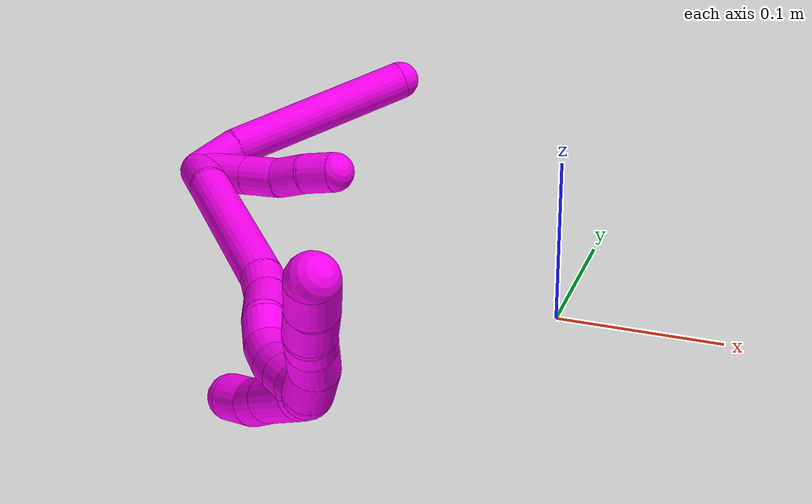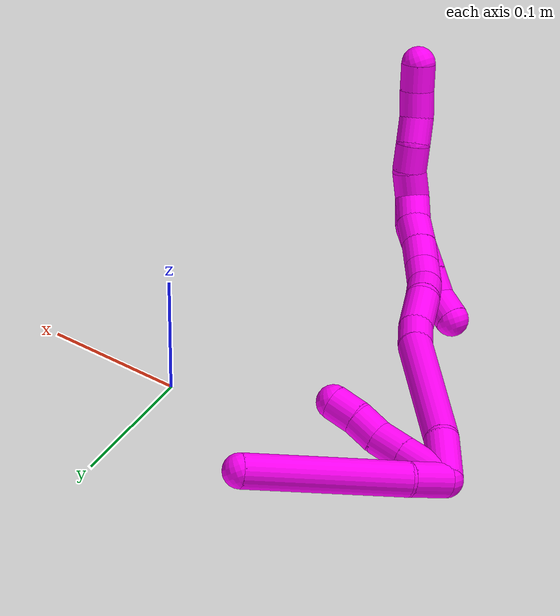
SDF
<sdf version="1.7">
 <world name="default">
  <model name="10">
   <static>0</static>
   <link name="10">
    <collision name="collision-cylinder-e_1_2_8">
     <pose>0.00264 0.013612 0.004619 -1.24366 0.181635 -0.130348</pose>
     <geometry><cylinder><radius>0.0125</radius><length>0.029229</length></cylinder></geometry>
     <surface>
      <friction><ode><mu>1.16</mu><mu2>1.16</mu2><slip1>0</slip1><slip2>0</slip2></ode></friction>
      <contact><ode><kp>1e+06</kp><kd>1</kd><max_vel>0</max_vel><min_depth>0.001</min_depth></ode></contact>
     </surface>
    </collision>
    <visual name="visual-cylinder-e_1_2_8">
     <pose>0.00264 0.013612 0.004619 -1.24366 0.181635 -0.130348</pose>
     <geometry><cylinder><radius>0.0125</radius><length>0.029229</length></cylinder></geometry>
     <material><ambient>1 0 0.964706 1</ambient></material>
    </visual>
    <collision name="collision-cylinder-e_2_8_6">
     <pose>0.027486 0.078795 0.031456 -1.164 0.376581 -0.24947</pose>
     <geometry><cylinder><radius>0.0125</radius><length>0.120771</length></cylinder></geometry>
     <surface>
      <friction><ode><mu>1.16</mu><mu2>1.16</mu2><slip1>0</slip1><slip2>0</slip2></ode></friction>
      <contact><ode><kp>1e+06</kp><kd>1</kd><max_vel>0</max_vel><min_depth>0.001</min_depth></ode></contact>
     </surface>
    </collision>
    <visual name="visual-cylinder-e_2_8_6">
     <pose>0.027486 0.078795 0.031456 -1.164 0.376581 -0.24947</pose>
     <geometry><cylinder><radius>0.0125</radius><length>0.120771</length></cylinder></geometry>
     <material><ambient>1 0 0.964706 1</ambient></material>
    </visual>
    <collision name="collision-cylinder-e_1_2_9">
     <pose>0.012075 0.002918 0.01321 -0.217424 0.728661 -0.083196</pose>
     <geometry><cylinder><radius>0.0125</radius><length>0.036267</length></cylinder></geometry>
     <surface>
      <friction><ode><mu>1.16</mu><mu2>1.16</mu2><slip1>0</slip1><slip2>0</slip2></ode></friction>
      <contact><ode><kp>1e+06</kp><kd>1</kd><max_vel>0</max_vel><min_depth>0.001</min_depth></ode></contact>
     </surface>
    </collision>
    <visual name="visual-cylinder-e_1_2_9">
     <pose>0.012075 0.002918 0.01321 -0.217424 0.728661 -0.083196</pose>
     <geometry><cylinder><radius>0.0125</radius><length>0.036267</length></cylinder></geometry>
     <material><ambient>1 0 0.964706 1</ambient></material>
    </visual>
    <collision name="collision-cylinder-e_2_9_10">
     <pose>0.031836 0.007693 0.034821 -0.217522 0.729222 -0.083304</pose>
     <geometry><cylinder><radius>0.0125</radius><length>0.023074</length></cylinder></geometry>
     <surface>
      <friction><ode><mu>1.16</mu><mu2>1.16</mu2><slip1>0</slip1><slip2>0</slip2></ode></friction>
      <contact><ode><kp>1e+06</kp><kd>1</kd><max_vel>0</max_vel><min_depth>0.001</min_depth></ode></contact>
     </surface>
    </collision>
    <visual name="visual-cylinder-e_2_9_10">
     <pose>0.031836 0.007693 0.034821 -0.217522 0.729222 -0.083304</pose>
     <geometry><cylinder><radius>0.0125</radius><length>0.023074</length></cylinder></geometry>
     <material><ambient>1 0 0.964706 1</ambient></material>
    </visual>
    <collision name="collision-cylinder-e_3_10_11">
     <pose>0.044217 0.011372 0.051968 -0.205356 0.483751 -0.05083</pose>
     <geometry><cylinder><radius>0.0125</radius><length>0.020185</length></cylinder></geometry>
     <surface>
      <friction><ode><mu>1.16</mu><mu2>1.16</mu2><slip1>0</slip1><slip2>0</slip2></ode></friction>
      <contact><ode><kp>1e+06</kp><kd>1</kd><max_vel>0</max_vel><min_depth>0.001</min_depth></ode></contact>
     </surface>
    </collision>
    <visual name="visual-cylinder-e_3_10_11">
     <pose>0.044217 0.011372 0.051968 -0.205356 0.483751 -0.05083</pose>
     <geometry><cylinder><radius>0.0125</radius><length>0.020185</length></cylinder></geometry>
     <material><ambient>1 0 0.964706 1</ambient></material>
    </visual>
    <collision name="collision-cylinder-e_4_11_5">
     <pose>0.054886 0.015573 0.06868 -0.290262 0.623239 -0.09409</pose>
     <geometry><cylinder><radius>0.0125</radius><length>0.020474</length></cylinder></geometry>
     <surface>
      <friction><ode><mu>1.16</mu><mu2>1.16</mu2><slip1>0</slip1><slip2>0</slip2></ode></friction>
      <contact><ode><kp>1e+06</kp><kd>1</kd><max_vel>0</max_vel><min_depth>0.001</min_depth></ode></contact>
     </surface>
    </collision>
    <visual name="visual-cylinder-e_4_11_5">
     <pose>0.054886 0.015573 0.06868 -0.290262 0.623239 -0.09409</pose>
     <geometry><cylinder><radius>0.0125</radius><length>0.020474</length></cylinder></geometry>
     <material><ambient>1 0 0.964706 1</ambient></material>
    </visual>
    <collision name="collision-cylinder-e_1_2_12">
     <pose>0.006251 -0.010643 0.013729 0.659451 0.345392 0.119247</pose>
     <geometry><cylinder><radius>0.0125</radius><length>0.036924</length></cylinder></geometry>
     <surface>
      <friction><ode><mu>1.16</mu><mu2>1.16</mu2><slip1>0</slip1><slip2>0</slip2></ode></friction>
      <contact><ode><kp>1e+06</kp><kd>1</kd><max_vel>0</max_vel><min_depth>0.001</min_depth></ode></contact>
     </surface>
    </collision>
    <visual name="visual-cylinder-e_1_2_12">
     <pose>0.006251 -0.010643 0.013729 0.659451 0.345392 0.119247</pose>
     <geometry><cylinder><radius>0.0125</radius><length>0.036924</length></cylinder></geometry>
     <material><ambient>1 0 0.964706 1</ambient></material>
    </visual>
    <collision name="collision-cylinder-e_2_12_13">
     <pose>0.042592 -0.053078 0.061312 0.754007 0.574923 0.233061</pose>
     <geometry><cylinder><radius>0.0125</radius><length>0.110675</length></cylinder></geometry>
     <surface>
      <friction><ode><mu>1.16</mu><mu2>1.16</mu2><slip1>0</slip1><slip2>0</slip2></ode></friction>
      <contact><ode><kp>1e+06</kp><kd>1</kd><max_vel>0</max_vel><min_depth>0.001</min_depth></ode></contact>
     </surface>
    </collision>
    <visual name="visual-cylinder-e_2_12_13">
     <pose>0.042592 -0.053078 0.061312 0.754007 0.574923 0.233061</pose>
     <geometry><cylinder><radius>0.0125</radius><length>0.110675</length></cylinder></geometry>
     <material><ambient>1 0 0.964706 1</ambient></material>
    </visual>
    <collision name="collision-cylinder-e_3_13_14">
     <pose>0.077102 -0.092207 0.101317 0.872959 0.432393 0.204196</pose>
     <geometry><cylinder><radius>0.0125</radius><length>0.02109</length></cylinder></geometry>
     <surface>
      <friction><ode><mu>1.16</mu><mu2>1.16</mu2><slip1>0</slip1><slip2>0</slip2></ode></friction>
      <contact><ode><kp>1e+06</kp><kd>1</kd><max_vel>0</max_vel><min_depth>0.001</min_depth></ode></contact>
     </surface>
    </collision>
    <visual name="visual-cylinder-e_3_13_14">
     <pose>0.077102 -0.092207 0.101317 0.872959 0.432393 0.204196</pose>
     <geometry><cylinder><radius>0.0125</radius><length>0.02109</length></cylinder></geometry>
     <material><ambient>1 0 0.964706 1</ambient></material>
    </visual>
    <collision name="collision-cylinder-e_4_14_15">
     <pose>0.084789 -0.110968 0.116868 0.882417 0.21746 0.103013</pose>
     <geometry><cylinder><radius>0.0125</radius><length>0.030301</length></cylinder></geometry>
     <surface>
      <friction><ode><mu>1.16</mu><mu2>1.16</mu2><slip1>0</slip1><slip2>0</slip2></ode></friction>
      <contact><ode><kp>1e+06</kp><kd>1</kd><max_vel>0</max_vel><min_depth>0.001</min_depth></ode></contact>
     </surface>
    </collision>
    <visual name="visual-cylinder-e_4_14_15">
     <pose>0.084789 -0.110968 0.116868 0.882417 0.21746 0.103013</pose>
     <geometry><cylinder><radius>0.0125</radius><length>0.030301</length></cylinder></geometry>
     <material><ambient>1 0 0.964706 1</ambient></material>
    </visual>
    <collision name="collision-cylinder-e_5_15_16">
     <pose>0.093016 -0.130189 0.130589 1.06448 0.507566 0.303164</pose>
     <geometry><cylinder><radius>0.0125</radius><length>0.020401</length></cylinder></geometry>
     <surface>
      <friction><ode><mu>1.16</mu><mu2>1.16</mu2><slip1>0</slip1><slip2>0</slip2></ode></friction>
      <contact><ode><kp>1e+06</kp><kd>1</kd><max_vel>0</max_vel><min_depth>0.001</min_depth></ode></contact>
     </surface>
    </collision>
    <visual name="visual-cylinder-e_5_15_16">
     <pose>0.093016 -0.130189 0.130589 1.06448 0.507566 0.303164</pose>
     <geometry><cylinder><radius>0.0125</radius><length>0.020401</length></cylinder></geometry>
     <material><ambient>1 0 0.964706 1</ambient></material>
    </visual>
    <collision name="collision-cylinder-e_6_16_17">
     <pose>0.102089 -0.143939 0.141836 0.710276 0.423409 0.159079</pose>
     <geometry><cylinder><radius>0.0125</radius><length>0.020032</length></cylinder></geometry>
     <surface>
      <friction><ode><mu>1.16</mu><mu2>1.16</mu2><slip1>0</slip1><slip2>0</slip2></ode></friction>
      <contact><ode><kp>1e+06</kp><kd>1</kd><max_vel>0</max_vel><min_depth>0.001</min_depth></ode></contact>
     </surface>
    </collision>
    <visual name="visual-cylinder-e_6_16_17">
     <pose>0.102089 -0.143939 0.141836 0.710276 0.423409 0.159079</pose>
     <geometry><cylinder><radius>0.0125</radius><length>0.020032</length></cylinder></geometry>
     <material><ambient>1 0 0.964706 1</ambient></material>
    </visual>
    <collision name="collision-cylinder-e_7_17_18">
     <pose>0.109199 -0.155085 0.156857 0.570087 0.301791 0.08905</pose>
     <geometry><cylinder><radius>0.0125</radius><length>0.020147</length></cylinder></geometry>
     <surface>
      <friction><ode><mu>1.16</mu><mu2>1.16</mu2><slip1>0</slip1><slip2>0</slip2></ode></friction>
      <contact><ode><kp>1e+06</kp><kd>1</kd><max_vel>0</max_vel><min_depth>0.001</min_depth></ode></contact>
     </surface>
    </collision>
    <visual name="visual-cylinder-e_7_17_18">
     <pose>0.109199 -0.155085 0.156857 0.570087 0.301791 0.08905</pose>
     <geometry><cylinder><radius>0.0125</radius><length>0.020147</length></cylinder></geometry>
     <material><ambient>1 0 0.964706 1</ambient></material>
    </visual>
    <collision name="collision-cylinder-e_8_18_19">
     <pose>0.115295 -0.164649 0.173431 0.476261 0.314428 0.07692</pose>
     <geometry><cylinder><radius>0.0125</radius><length>0.020061</length></cylinder></geometry>
     <surface>
      <friction><ode><mu>1.16</mu><mu2>1.16</mu2><slip1>0</slip1><slip2>0</slip2></ode></friction>
      <contact><ode><kp>1e+06</kp><kd>1</kd><max_vel>0</max_vel><min_depth>0.001</min_depth></ode></contact>
     </surface>
    </collision>
    <visual name="visual-cylinder-e_8_18_19">
     <pose>0.115295 -0.164649 0.173431 0.476261 0.314428 0.07692</pose>
     <geometry><cylinder><radius>0.0125</radius><length>0.020061</length></cylinder></geometry>
     <material><ambient>1 0 0.964706 1</ambient></material>
    </visual>
    <collision name="collision-cylinder-e_9_19_1">
     <pose>0.119885 -0.173965 0.190688 0.512809 0.146586 0.038495</pose>
     <geometry><cylinder><radius>0.0125</radius><length>0.020368</length></cylinder></geometry>
     <surface>
      <friction><ode><mu>1.16</mu><mu2>1.16</mu2><slip1>0</slip1><slip2>0</slip2></ode></friction>
      <contact><ode><kp>1e+06</kp><kd>1</kd><max_vel>0</max_vel><min_depth>0.001</min_depth></ode></contact>
     </surface>
    </collision>
    <visual name="visual-cylinder-e_9_19_1">
     <pose>0.119885 -0.173965 0.190688 0.512809 0.146586 0.038495</pose>
     <geometry><cylinder><radius>0.0125</radius><length>0.020368</length></cylinder></geometry>
     <material><ambient>1 0 0.964706 1</ambient></material>
    </visual>
    <collision name="collision-cylinder-e_1_1_20">
     <pose>0.117635 -0.178415 0.208728 -0.053232 -0.383081 0.010325</pose>
     <geometry><cylinder><radius>0.0125</radius><length>0.02</length></cylinder></geometry>
     <surface>
      <friction><ode><mu>1.16</mu><mu2>1.16</mu2><slip1>0</slip1><slip2>0</slip2></ode></friction>
      <contact><ode><kp>1e+06</kp><kd>1</kd><max_vel>0</max_vel><min_depth>0.001</min_depth></ode></contact>
     </surface>
    </collision>
    <visual name="visual-cylinder-e_1_1_20">
     <pose>0.117635 -0.178415 0.208728 -0.053232 -0.383081 0.010325</pose>
     <geometry><cylinder><radius>0.0125</radius><length>0.02</length></cylinder></geometry>
     <material><ambient>1 0 0.964706 1</ambient></material>
    </visual>
    <collision name="collision-cylinder-e_2_20_21">
     <pose>0.108931 -0.179455 0.226534 0.177629 -0.51964 -0.047335</pose>
     <geometry><cylinder><radius>0.0125</radius><length>0.02</length></cylinder></geometry>
     <surface>
      <friction><ode><mu>1.16</mu><mu2>1.16</mu2><slip1>0</slip1><slip2>0</slip2></ode></friction>
      <contact><ode><kp>1e+06</kp><kd>1</kd><max_vel>0</max_vel><min_depth>0.001</min_depth></ode></contact>
     </surface>
    </collision>
    <visual name="visual-cylinder-e_2_20_21">
     <pose>0.108931 -0.179455 0.226534 0.177629 -0.51964 -0.047335</pose>
     <geometry><cylinder><radius>0.0125</radius><length>0.02</length></cylinder></geometry>
     <material><ambient>1 0 0.964706 1</ambient></material>
    </visual>
    <collision name="collision-cylinder-e_3_21_22">
     <pose>0.100989 -0.184481 0.243962 0.374512 -0.30219 -0.057682</pose>
     <geometry><cylinder><radius>0.0125</radius><length>0.02</length></cylinder></geometry>
     <surface>
      <friction><ode><mu>1.16</mu><mu2>1.16</mu2><slip1>0</slip1><slip2>0</slip2></ode></friction>
      <contact><ode><kp>1e+06</kp><kd>1</kd><max_vel>0</max_vel><min_depth>0.001</min_depth></ode></contact>
     </surface>
    </collision>
    <visual name="visual-cylinder-e_3_21_22">
     <pose>0.100989 -0.184481 0.243962 0.374512 -0.30219 -0.057682</pose>
     <geometry><cylinder><radius>0.0125</radius><length>0.02</length></cylinder></geometry>
     <material><ambient>1 0 0.964706 1</ambient></material>
    </visual>
    <collision name="collision-cylinder-e_4_22_23">
     <pose>0.094069 -0.188974 0.261982 0.109125 -0.405428 -0.02245</pose>
     <geometry><cylinder><radius>0.0125</radius><length>0.02</length></cylinder></geometry>
     <surface>
      <friction><ode><mu>1.16</mu><mu2>1.16</mu2><slip1>0</slip1><slip2>0</slip2></ode></friction>
      <contact><ode><kp>1e+06</kp><kd>1</kd><max_vel>0</max_vel><min_depth>0.001</min_depth></ode></contact>
     </surface>
    </collision>
    <visual name="visual-cylinder-e_4_22_23">
     <pose>0.094069 -0.188974 0.261982 0.109125 -0.405428 -0.02245</pose>
     <geometry><cylinder><radius>0.0125</radius><length>0.02</length></cylinder></geometry>
     <material><ambient>1 0 0.964706 1</ambient></material>
    </visual>
    <collision name="collision-cylinder-e_5_23_4">
     <pose>0.085378 -0.190666 0.279891 0.078548 -0.494579 -0.019839</pose>
     <geometry><cylinder><radius>0.0125</radius><length>0.02</length></cylinder></geometry>
     <surface>
      <friction><ode><mu>1.16</mu><mu2>1.16</mu2><slip1>0</slip1><slip2>0</slip2></ode></friction>
      <contact><ode><kp>1e+06</kp><kd>1</kd><max_vel>0</max_vel><min_depth>0.001</min_depth></ode></contact>
     </surface>
    </collision>
    <visual name="visual-cylinder-e_5_23_4">
     <pose>0.085378 -0.190666 0.279891 0.078548 -0.494579 -0.019839</pose>
     <geometry><cylinder><radius>0.0125</radius><length>0.02</length></cylinder></geometry>
     <material><ambient>1 0 0.964706 1</ambient></material>
    </visual>
    <collision name="collision-cylinder-e_1_1_24">
     <pose>0.121933 -0.174548 0.189419 -2.73216 0.051167 -0.245256</pose>
     <geometry><cylinder><radius>0.0125</radius><length>0.021935</length></cylinder></geometry>
     <surface>
      <friction><ode><mu>1.16</mu><mu2>1.16</mu2><slip1>0</slip1><slip2>0</slip2></ode></friction>
      <contact><ode><kp>1e+06</kp><kd>1</kd><max_vel>0</max_vel><min_depth>0.001</min_depth></ode></contact>
     </surface>
    </collision>
    <visual name="visual-cylinder-e_1_1_24">
     <pose>0.121933 -0.174548 0.189419 -2.73216 0.051167 -0.245256</pose>
     <geometry><cylinder><radius>0.0125</radius><length>0.021935</length></cylinder></geometry>
     <material><ambient>1 0 0.964706 1</ambient></material>
    </visual>
    <collision name="collision-cylinder-e_2_24_25">
     <pose>0.119207 -0.166773 0.161127 -2.95656 -0.175284 1.51639</pose>
     <geometry><cylinder><radius>0.0125</radius><length>0.0377</length></cylinder></geometry>
     <surface>
      <friction><ode><mu>1.16</mu><mu2>1.16</mu2><slip1>0</slip1><slip2>0</slip2></ode></friction>
      <contact><ode><kp>1e+06</kp><kd>1</kd><max_vel>0</max_vel><min_depth>0.001</min_depth></ode></contact>
     </surface>
    </collision>
    <visual name="visual-cylinder-e_2_24_25">
     <pose>0.119207 -0.166773 0.161127 -2.95656 -0.175284 1.51639</pose>
     <geometry><cylinder><radius>0.0125</radius><length>0.0377</length></cylinder></geometry>
     <material><ambient>1 0 0.964706 1</ambient></material>
    </visual>
    <collision name="collision-cylinder-e_3_25_26">
     <pose>0.114568 -0.161851 0.133015 -2.99009 -0.134669 1.45289</pose>
     <geometry><cylinder><radius>0.0125</radius><length>0.020146</length></cylinder></geometry>
     <surface>
      <friction><ode><mu>1.16</mu><mu2>1.16</mu2><slip1>0</slip1><slip2>0</slip2></ode></friction>
      <contact><ode><kp>1e+06</kp><kd>1</kd><max_vel>0</max_vel><min_depth>0.001</min_depth></ode></contact>
     </surface>
    </collision>
    <visual name="visual-cylinder-e_3_25_26">
     <pose>0.114568 -0.161851 0.133015 -2.99009 -0.134669 1.45289</pose>
     <geometry><cylinder><radius>0.0125</radius><length>0.020146</length></cylinder></geometry>
     <material><ambient>1 0 0.964706 1</ambient></material>
    </visual>
    <collision name="collision-cylinder-e_4_26_3">
     <pose>0.108541 -0.158954 0.114292 -2.98585 -0.480657 2.52509</pose>
     <geometry><cylinder><radius>0.0125</radius><length>0.020219</length></cylinder></geometry>
     <surface>
      <friction><ode><mu>1.16</mu><mu2>1.16</mu2><slip1>0</slip1><slip2>0</slip2></ode></friction>
      <contact><ode><kp>1e+06</kp><kd>1</kd><max_vel>0</max_vel><min_depth>0.001</min_depth></ode></contact>
     </surface>
    </collision>
    <visual name="visual-cylinder-e_4_26_3">
     <pose>0.108541 -0.158954 0.114292 -2.98585 -0.480657 2.52509</pose>
     <geometry><cylinder><radius>0.0125</radius><length>0.020219</length></cylinder></geometry>
     <material><ambient>1 0 0.964706 1</ambient></material>
    </visual>
    <collision name="collision-sphere-3">
     <pose>0.103867 -0.157564 0.105436 0 -0 0</pose>
     <geometry><sphere><radius>0.0125</radius></sphere></geometry>
     <surface>
      <friction><ode><mu>1.16</mu><mu2>1.16</mu2><slip1>0</slip1><slip2>0</slip2></ode></friction>
      <contact><ode><kp>1e+06</kp><kd>1</kd><max_vel>0</max_vel><min_depth>0.001</min_depth></ode></contact>
     </surface>
    </collision>
    <visual name="visual-sphere-3">
     <pose>0.103867 -0.157564 0.105436 0 -0 0</pose>
     <geometry><sphere><radius>0.0125</radius></sphere></geometry>
     <material><ambient>1 0 0.964706 1</ambient></material>
    </visual>
    <collision name="collision-sphere-26">
     <pose>0.113215 -0.160345 0.123147 0 -0 0</pose>
     <geometry><sphere><radius>0.0125</radius></sphere></geometry>
     <surface>
      <friction><ode><mu>1.16</mu><mu2>1.16</mu2><slip1>0</slip1><slip2>0</slip2></ode></friction>
      <contact><ode><kp>1e+06</kp><kd>1</kd><max_vel>0</max_vel><min_depth>0.001</min_depth></ode></contact>
     </surface>
    </collision>
    <visual name="visual-sphere-26">
     <pose>0.113215 -0.160345 0.123147 0 -0 0</pose>
     <geometry><sphere><radius>0.0125</radius></sphere></geometry>
     <material><ambient>1 0 0.964706 1</ambient></material>
    </visual>
    <collision name="collision-sphere-25">
     <pose>0.11592 -0.163358 0.142882 0 -0 0</pose>
     <geometry><sphere><radius>0.0125</radius></sphere></geometry>
     <surface>
      <friction><ode><mu>1.16</mu><mu2>1.16</mu2><slip1>0</slip1><slip2>0</slip2></ode></friction>
      <contact><ode><kp>1e+06</kp><kd>1</kd><max_vel>0</max_vel><min_depth>0.001</min_depth></ode></contact>
     </surface>
    </collision>
    <visual name="visual-sphere-25">
     <pose>0.11592 -0.163358 0.142882 0 -0 0</pose>
     <geometry><sphere><radius>0.0125</radius></sphere></geometry>
     <material><ambient>1 0 0.964706 1</ambient></material>
    </visual>
    <collision name="collision-sphere-24">
     <pose>0.122494 -0.170187 0.179371 0 -0 0</pose>
     <geometry><sphere><radius>0.0125</radius></sphere></geometry>
     <surface>
      <friction><ode><mu>1.16</mu><mu2>1.16</mu2><slip1>0</slip1><slip2>0</slip2></ode></friction>
      <contact><ode><kp>1e+06</kp><kd>1</kd><max_vel>0</max_vel><min_depth>0.001</min_depth></ode></contact>
     </surface>
    </collision>
    <visual name="visual-sphere-24">
     <pose>0.122494 -0.170187 0.179371 0 -0 0</pose>
     <geometry><sphere><radius>0.0125</radius></sphere></geometry>
     <material><ambient>1 0 0.964706 1</ambient></material>
    </visual>
    <collision name="collision-sphere-4">
     <pose>0.080632 -0.191356 0.288666 0 -0 0</pose>
     <geometry><sphere><radius>0.0125</radius></sphere></geometry>
     <surface>
      <friction><ode><mu>1.16</mu><mu2>1.16</mu2><slip1>0</slip1><slip2>0</slip2></ode></friction>
      <contact><ode><kp>1e+06</kp><kd>1</kd><max_vel>0</max_vel><min_depth>0.001</min_depth></ode></contact>
     </surface>
    </collision>
    <visual name="visual-sphere-4">
     <pose>0.080632 -0.191356 0.288666 0 -0 0</pose>
     <geometry><sphere><radius>0.0125</radius></sphere></geometry>
     <material><ambient>1 0 0.964706 1</ambient></material>
    </visual>
    <collision name="collision-sphere-23">
     <pose>0.090125 -0.189975 0.271117 0 -0 0</pose>
     <geometry><sphere><radius>0.0125</radius></sphere></geometry>
     <surface>
      <friction><ode><mu>1.16</mu><mu2>1.16</mu2><slip1>0</slip1><slip2>0</slip2></ode></friction>
      <contact><ode><kp>1e+06</kp><kd>1</kd><max_vel>0</max_vel><min_depth>0.001</min_depth></ode></contact>
     </surface>
    </collision>
    <visual name="visual-sphere-23">
     <pose>0.090125 -0.189975 0.271117 0 -0 0</pose>
     <geometry><sphere><radius>0.0125</radius></sphere></geometry>
     <material><ambient>1 0 0.964706 1</ambient></material>
    </visual>
    <collision name="collision-sphere-22">
     <pose>0.098013 -0.187973 0.252848 0 -0 0</pose>
     <geometry><sphere><radius>0.0125</radius></sphere></geometry>
     <surface>
      <friction><ode><mu>1.16</mu><mu2>1.16</mu2><slip1>0</slip1><slip2>0</slip2></ode></friction>
      <contact><ode><kp>1e+06</kp><kd>1</kd><max_vel>0</max_vel><min_depth>0.001</min_depth></ode></contact>
     </surface>
    </collision>
    <visual name="visual-sphere-22">
     <pose>0.098013 -0.187973 0.252848 0 -0 0</pose>
     <geometry><sphere><radius>0.0125</radius></sphere></geometry>
     <material><ambient>1 0 0.964706 1</ambient></material>
    </visual>
    <collision name="collision-sphere-21">
     <pose>0.103966 -0.180989 0.235077 0 -0 0</pose>
     <geometry><sphere><radius>0.0125</radius></sphere></geometry>
     <surface>
      <friction><ode><mu>1.16</mu><mu2>1.16</mu2><slip1>0</slip1><slip2>0</slip2></ode></friction>
      <contact><ode><kp>1e+06</kp><kd>1</kd><max_vel>0</max_vel><min_depth>0.001</min_depth></ode></contact>
     </surface>
    </collision>
    <visual name="visual-sphere-21">
     <pose>0.103966 -0.180989 0.235077 0 -0 0</pose>
     <geometry><sphere><radius>0.0125</radius></sphere></geometry>
     <material><ambient>1 0 0.964706 1</ambient></material>
    </visual>
    <collision name="collision-sphere-20">
     <pose>0.113897 -0.177921 0.21799 0 -0 0</pose>
     <geometry><sphere><radius>0.0125</radius></sphere></geometry>
     <surface>
      <friction><ode><mu>1.16</mu><mu2>1.16</mu2><slip1>0</slip1><slip2>0</slip2></ode></friction>
      <contact><ode><kp>1e+06</kp><kd>1</kd><max_vel>0</max_vel><min_depth>0.001</min_depth></ode></contact>
     </surface>
    </collision>
    <visual name="visual-sphere-20">
     <pose>0.113897 -0.177921 0.21799 0 -0 0</pose>
     <geometry><sphere><radius>0.0125</radius></sphere></geometry>
     <material><ambient>1 0 0.964706 1</ambient></material>
    </visual>
    <collision name="collision-sphere-11">
     <pose>0.048911 0.013194 0.060715 0 -0 0</pose>
     <geometry><sphere><radius>0.0125</radius></sphere></geometry>
     <surface>
      <friction><ode><mu>1.16</mu><mu2>1.16</mu2><slip1>0</slip1><slip2>0</slip2></ode></friction>
      <contact><ode><kp>1e+06</kp><kd>1</kd><max_vel>0</max_vel><min_depth>0.001</min_depth></ode></contact>
     </surface>
    </collision>
    <visual name="visual-sphere-11">
     <pose>0.048911 0.013194 0.060715 0 -0 0</pose>
     <geometry><sphere><radius>0.0125</radius></sphere></geometry>
     <material><ambient>1 0 0.964706 1</ambient></material>
    </visual>
    <collision name="collision-sphere-10">
     <pose>0.039523 0.00955 0.043221 0 -0 0</pose>
     <geometry><sphere><radius>0.0125</radius></sphere></geometry>
     <surface>
      <friction><ode><mu>1.16</mu><mu2>1.16</mu2><slip1>0</slip1><slip2>0</slip2></ode></friction>
      <contact><ode><kp>1e+06</kp><kd>1</kd><max_vel>0</max_vel><min_depth>0.001</min_depth></ode></contact>
     </surface>
    </collision>
    <visual name="visual-sphere-10">
     <pose>0.039523 0.00955 0.043221 0 -0 0</pose>
     <geometry><sphere><radius>0.0125</radius></sphere></geometry>
     <material><ambient>1 0 0.964706 1</ambient></material>
    </visual>
    <collision name="collision-sphere-6">
     <pose>0.049693 0.130367 0.053675 0 -0 0</pose>
     <geometry><sphere><radius>0.0125</radius></sphere></geometry>
     <surface>
      <friction><ode><mu>1.16</mu><mu2>1.16</mu2><slip1>0</slip1><slip2>0</slip2></ode></friction>
      <contact><ode><kp>1e+06</kp><kd>1</kd><max_vel>0</max_vel><min_depth>0.001</min_depth></ode></contact>
     </surface>
    </collision>
    <visual name="visual-sphere-6">
     <pose>0.049693 0.130367 0.053675 0 -0 0</pose>
     <geometry><sphere><radius>0.0125</radius></sphere></geometry>
     <material><ambient>1 0 0.964706 1</ambient></material>
    </visual>
    <collision name="collision-sphere-9">
     <pose>0.024149 0.005837 0.026421 0 -0 0</pose>
     <geometry><sphere><radius>0.0125</radius></sphere></geometry>
     <surface>
      <friction><ode><mu>1.16</mu><mu2>1.16</mu2><slip1>0</slip1><slip2>0</slip2></ode></friction>
      <contact><ode><kp>1e+06</kp><kd>1</kd><max_vel>0</max_vel><min_depth>0.001</min_depth></ode></contact>
     </surface>
    </collision>
    <visual name="visual-sphere-9">
     <pose>0.024149 0.005837 0.026421 0 -0 0</pose>
     <geometry><sphere><radius>0.0125</radius></sphere></geometry>
     <material><ambient>1 0 0.964706 1</ambient></material>
    </visual>
    <collision name="collision-sphere-2">
     <geometry><sphere><radius>0.0125</radius></sphere></geometry>
     <surface>
      <friction><ode><mu>1.16</mu><mu2>1.16</mu2><slip1>0</slip1><slip2>0</slip2></ode></friction>
      <contact><ode><kp>1e+06</kp><kd>1</kd><max_vel>0</max_vel><min_depth>0.001</min_depth></ode></contact>
     </surface>
    </collision>
    <visual name="visual-sphere-2">
     <geometry><sphere><radius>0.0125</radius></sphere></geometry>
     <material><ambient>1 0 0.964706 1</ambient></material>
    </visual>
    <collision name="collision-sphere-19">
     <pose>0.118398 -0.169022 0.181909 0 -0 0</pose>
     <geometry><sphere><radius>0.0125</radius></sphere></geometry>
     <surface>
      <friction><ode><mu>1.16</mu><mu2>1.16</mu2><slip1>0</slip1><slip2>0</slip2></ode></friction>
      <contact><ode><kp>1e+06</kp><kd>1</kd><max_vel>0</max_vel><min_depth>0.001</min_depth></ode></contact>
     </surface>
    </collision>
    <visual name="visual-sphere-19">
     <pose>0.118398 -0.169022 0.181909 0 -0 0</pose>
     <geometry><sphere><radius>0.0125</radius></sphere></geometry>
     <material><ambient>1 0 0.964706 1</ambient></material>
    </visual>
    <collision name="collision-sphere-8">
     <pose>0.00528 0.027224 0.009238 0 -0 0</pose>
     <geometry><sphere><radius>0.0125</radius></sphere></geometry>
     <surface>
      <friction><ode><mu>1.16</mu><mu2>1.16</mu2><slip1>0</slip1><slip2>0</slip2></ode></friction>
      <contact><ode><kp>1e+06</kp><kd>1</kd><max_vel>0</max_vel><min_depth>0.001</min_depth></ode></contact>
     </surface>
    </collision>
    <visual name="visual-sphere-8">
     <pose>0.00528 0.027224 0.009238 0 -0 0</pose>
     <geometry><sphere><radius>0.0125</radius></sphere></geometry>
     <material><ambient>1 0 0.964706 1</ambient></material>
    </visual>
    <collision name="collision-sphere-5">
     <pose>0.060861 0.017952 0.076644 0 -0 0</pose>
     <geometry><sphere><radius>0.0125</radius></sphere></geometry>
     <surface>
      <friction><ode><mu>1.16</mu><mu2>1.16</mu2><slip1>0</slip1><slip2>0</slip2></ode></friction>
      <contact><ode><kp>1e+06</kp><kd>1</kd><max_vel>0</max_vel><min_depth>0.001</min_depth></ode></contact>
     </surface>
    </collision>
    <visual name="visual-sphere-5">
     <pose>0.060861 0.017952 0.076644 0 -0 0</pose>
     <geometry><sphere><radius>0.0125</radius></sphere></geometry>
     <material><ambient>1 0 0.964706 1</ambient></material>
    </visual>
    <collision name="collision-sphere-12">
     <pose>0.012501 -0.021286 0.027458 0 -0 0</pose>
     <geometry><sphere><radius>0.0125</radius></sphere></geometry>
     <surface>
      <friction><ode><mu>1.16</mu><mu2>1.16</mu2><slip1>0</slip1><slip2>0</slip2></ode></friction>
      <contact><ode><kp>1e+06</kp><kd>1</kd><max_vel>0</max_vel><min_depth>0.001</min_depth></ode></contact>
     </surface>
    </collision>
    <visual name="visual-sphere-12">
     <pose>0.012501 -0.021286 0.027458 0 -0 0</pose>
     <geometry><sphere><radius>0.0125</radius></sphere></geometry>
     <material><ambient>1 0 0.964706 1</ambient></material>
    </visual>
    <collision name="collision-sphere-13">
     <pose>0.072683 -0.08487 0.095165 0 -0 0</pose>
     <geometry><sphere><radius>0.0125</radius></sphere></geometry>
     <surface>
      <friction><ode><mu>1.16</mu><mu2>1.16</mu2><slip1>0</slip1><slip2>0</slip2></ode></friction>
      <contact><ode><kp>1e+06</kp><kd>1</kd><max_vel>0</max_vel><min_depth>0.001</min_depth></ode></contact>
     </surface>
    </collision>
    <visual name="visual-sphere-13">
     <pose>0.072683 -0.08487 0.095165 0 -0 0</pose>
     <geometry><sphere><radius>0.0125</radius></sphere></geometry>
     <material><ambient>1 0 0.964706 1</ambient></material>
    </visual>
    <collision name="collision-sphere-14">
     <pose>0.08152 -0.099543 0.107469 0 -0 0</pose>
     <geometry><sphere><radius>0.0125</radius></sphere></geometry>
     <surface>
      <friction><ode><mu>1.16</mu><mu2>1.16</mu2><slip1>0</slip1><slip2>0</slip2></ode></friction>
      <contact><ode><kp>1e+06</kp><kd>1</kd><max_vel>0</max_vel><min_depth>0.001</min_depth></ode></contact>
     </surface>
    </collision>
    <visual name="visual-sphere-14">
     <pose>0.08152 -0.099543 0.107469 0 -0 0</pose>
     <geometry><sphere><radius>0.0125</radius></sphere></geometry>
     <material><ambient>1 0 0.964706 1</ambient></material>
    </visual>
    <collision name="collision-sphere-15">
     <pose>0.088058 -0.122393 0.126266 0 -0 0</pose>
     <geometry><sphere><radius>0.0125</radius></sphere></geometry>
     <surface>
      <friction><ode><mu>1.16</mu><mu2>1.16</mu2><slip1>0</slip1><slip2>0</slip2></ode></friction>
      <contact><ode><kp>1e+06</kp><kd>1</kd><max_vel>0</max_vel><min_depth>0.001</min_depth></ode></contact>
     </surface>
    </collision>
    <visual name="visual-sphere-15">
     <pose>0.088058 -0.122393 0.126266 0 -0 0</pose>
     <geometry><sphere><radius>0.0125</radius></sphere></geometry>
     <material><ambient>1 0 0.964706 1</ambient></material>
    </visual>
    <collision name="collision-sphere-16">
     <pose>0.097974 -0.137985 0.134912 0 -0 0</pose>
     <geometry><sphere><radius>0.0125</radius></sphere></geometry>
     <surface>
      <friction><ode><mu>1.16</mu><mu2>1.16</mu2><slip1>0</slip1><slip2>0</slip2></ode></friction>
      <contact><ode><kp>1e+06</kp><kd>1</kd><max_vel>0</max_vel><min_depth>0.001</min_depth></ode></contact>
     </surface>
    </collision>
    <visual name="visual-sphere-16">
     <pose>0.097974 -0.137985 0.134912 0 -0 0</pose>
     <geometry><sphere><radius>0.0125</radius></sphere></geometry>
     <material><ambient>1 0 0.964706 1</ambient></material>
    </visual>
    <collision name="collision-sphere-17">
     <pose>0.106205 -0.149894 0.148759 0 -0 0</pose>
     <geometry><sphere><radius>0.0125</radius></sphere></geometry>
     <surface>
      <friction><ode><mu>1.16</mu><mu2>1.16</mu2><slip1>0</slip1><slip2>0</slip2></ode></friction>
      <contact><ode><kp>1e+06</kp><kd>1</kd><max_vel>0</max_vel><min_depth>0.001</min_depth></ode></contact>
     </surface>
    </collision>
    <visual name="visual-sphere-17">
     <pose>0.106205 -0.149894 0.148759 0 -0 0</pose>
     <geometry><sphere><radius>0.0125</radius></sphere></geometry>
     <material><ambient>1 0 0.964706 1</ambient></material>
    </visual>
    <collision name="collision-sphere-18">
     <pose>0.112193 -0.160276 0.164954 0 -0 0</pose>
     <geometry><sphere><radius>0.0125</radius></sphere></geometry>
     <surface>
      <friction><ode><mu>1.16</mu><mu2>1.16</mu2><slip1>0</slip1><slip2>0</slip2></ode></friction>
      <contact><ode><kp>1e+06</kp><kd>1</kd><max_vel>0</max_vel><min_depth>0.001</min_depth></ode></contact>
     </surface>
    </collision>
    <visual name="visual-sphere-18">
     <pose>0.112193 -0.160276 0.164954 0 -0 0</pose>
     <geometry><sphere><radius>0.0125</radius></sphere></geometry>
     <material><ambient>1 0 0.964706 1</ambient></material>
    </visual>
    <collision name="collision-sphere-1">
     <pose>0.121372 -0.178908 0.199466 0 -0 0</pose>
     <geometry><sphere><radius>0.0125</radius></sphere></geometry>
     <surface>
      <friction><ode><mu>1.16</mu><mu2>1.16</mu2><slip1>0</slip1><slip2>0</slip2></ode></friction>
      <contact><ode><kp>1e+06</kp><kd>1</kd><max_vel>0</max_vel><min_depth>0.001</min_depth></ode></contact>
     </surface>
    </collision>
    <visual name="visual-sphere-1">
     <pose>0.121372 -0.178908 0.199466 0 -0 0</pose>
     <geometry><sphere><radius>0.0125</radius></sphere></geometry>
     <material><ambient>1 0 0.964706 1</ambient></material>
    </visual>
    <inertial>
     <pose>0.064579 -0.068493 0.101751 0 -0 0</pose>
     <mass>0.75</mass>
     <inertia>
      <ixx>0.000278</ixx>
      <ixy>0</ixy>
      <ixz>0</ixz>
      <iyy>0.00019</iyy>
      <iyz>0</iyz>
      <izz>-0.000159</izz>
     </inertia>
    </inertial>
   </link>
   <pose>-0.244375 0.020791 0.055058 0.387752 0.748532 0.0372</pose>
  </model>
 </world>
</sdf>
